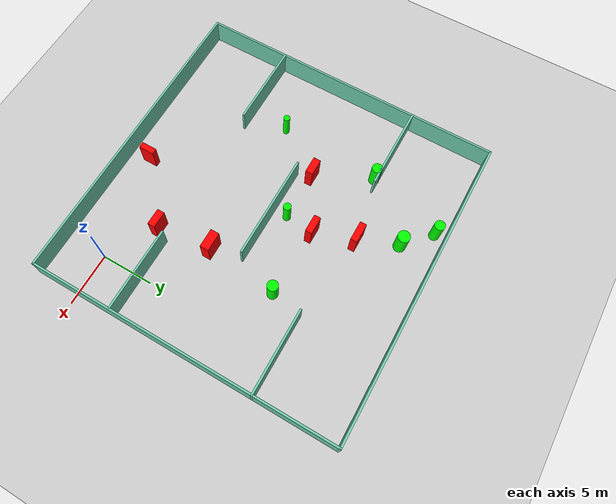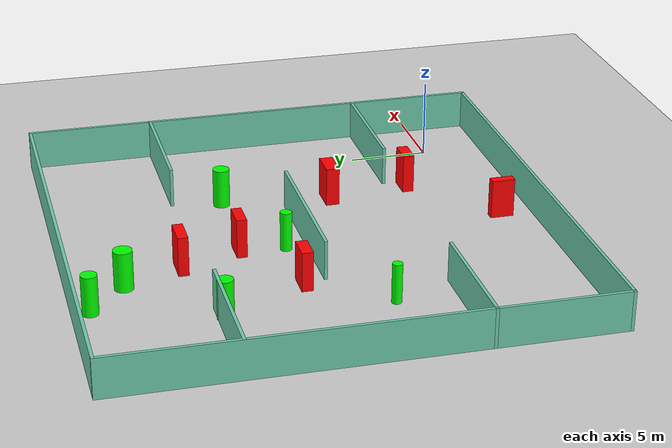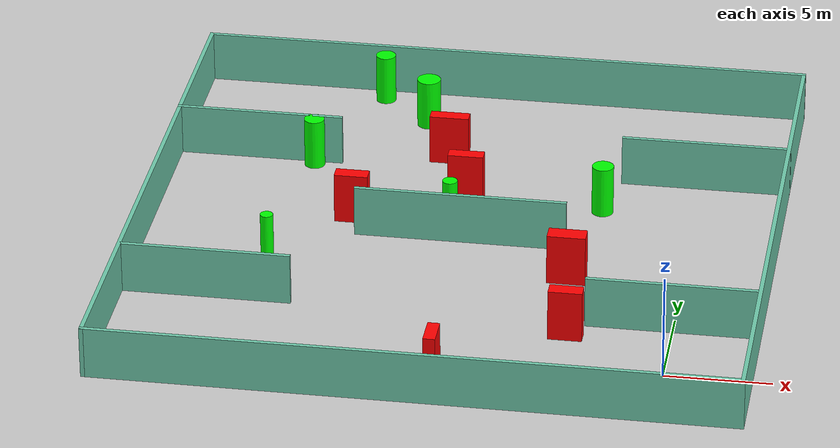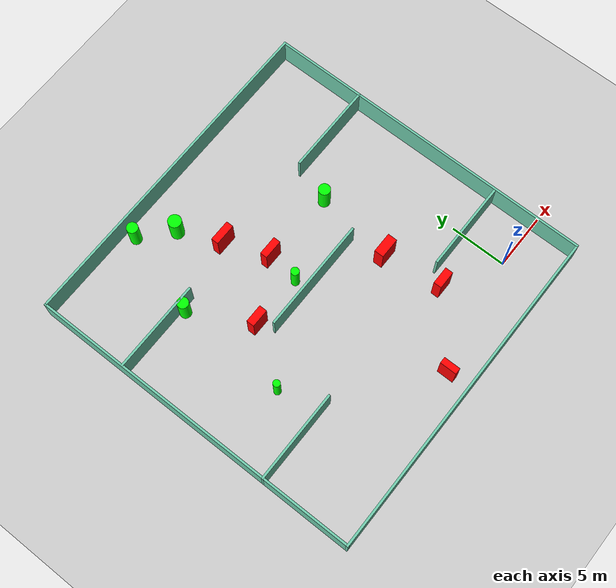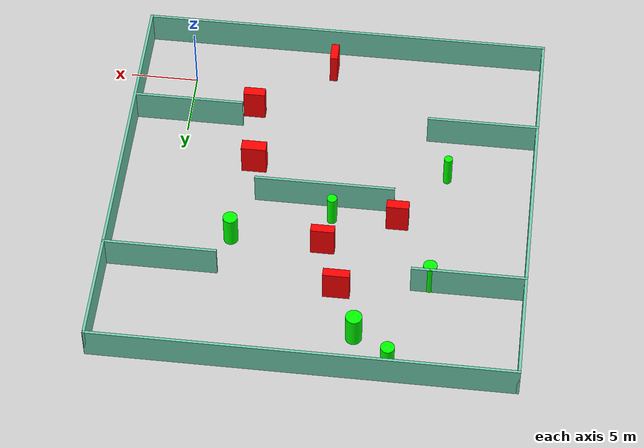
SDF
<sdf version="1.7">
 <world name="default">
  <light name="sun" type="directional">
   <pose>0 0 10 0 -0 0</pose>
   <diffuse>0.8 0.8 0.8 1</diffuse>
   <specular>0.2 0.2 0.2 1</specular>
   <attenuation>
    <range>1000</range>
    <constant>0.9</constant>
    <linear>0.01</linear>
    <quadratic>0.001</quadratic>
   </attenuation>
   <direction>-0.5 0.1 -0.9</direction>
   <spot><inner_angle>0</inner_angle><outer_angle>0</outer_angle><falloff>0</falloff></spot>
  </light>
  <model name="ground_plane">
   <static>1</static>
   <link name="link">
    <collision name="collision">
     <geometry><plane><normal>0 0 1</normal><size>100 100</size></plane></geometry>
     <surface>
      <contact><collide_bitmask>65535</collide_bitmask></contact>
      <friction><ode><mu>100</mu><mu2>50</mu2></ode></friction>
     </surface>
    </collision>
    <visual name="visual">
     <cast_shadows>0</cast_shadows>
     <geometry><plane><normal>0 0 1</normal><size>100 100</size></plane></geometry>
     <material>
      <script><uri>file://media/materials/scripts/gazebo.material</uri><name>Gazebo/Grey</name></script>
     </material>
    </visual>
   </link>
  </model>
  <gravity>0 0 -9.8</gravity>
  <magnetic_field>6e-06 2.3e-05 -4.2e-05</magnetic_field>
  <atmosphere type="adiabatic"/>
  <physics type="ode">
   <max_step_size>0.001</max_step_size>
   <real_time_factor>1</real_time_factor>
   <real_time_update_rate>1000</real_time_update_rate>
  </physics>
  <scene><ambient>0.4 0.4 0.4 1</ambient><background>0.7 0.7 0.7 1</background><shadows>1</shadows></scene>
  <spherical_coordinates>
   <surface_model>EARTH_WGS84</surface_model>
   <latitude_deg>0</latitude_deg>
   <longitude_deg>0</longitude_deg>
   <elevation>0</elevation>
   <heading_deg>0</heading_deg>
  </spherical_coordinates>
  <model name="my_base_walls">
   <link name="Wall_10">
    <collision name="Wall_10_Collision">
     <geometry><box><size>8.2 0.2 2.5</size></box></geometry>
     <pose>0 0 1.25 0 -0 0</pose>
    </collision>
    <visual name="Wall_10_Visual">
     <pose>0 0 1.25 0 -0 0</pose>
     <geometry><box><size>8.2 0.2 2.5</size></box></geometry>
     <material>
      <script><uri>file://media/materials/scripts/gazebo.material</uri><name>Gazebo/Grey</name></script>
      <ambient>0.435294 0.796078 0.67451 1</ambient>
     </material>
     <meta><layer>0</layer></meta>
    </visual>
    <pose>-11 -7 0 0 -0 0</pose>
   </link>
   <link name="Wall_12">
    <collision name="Wall_12_Collision">
     <geometry><box><size>8.2 0.2 2.5</size></box></geometry>
     <pose>0 0 1.25 0 -0 0</pose>
    </collision>
    <visual name="Wall_12_Visual">
     <pose>0 0 1.25 0 -0 0</pose>
     <geometry><box><size>8.2 0.2 2.5</size></box></geometry>
     <material>
      <script><uri>file://media/materials/scripts/gazebo.material</uri><name>Gazebo/Grey</name></script>
      <ambient>0.435294 0.796078 0.67451 1</ambient>
     </material>
     <meta><layer>0</layer></meta>
    </visual>
    <pose>-11 7 0 0 -0 0</pose>
   </link>
   <link name="Wall_14">
    <collision name="Wall_14_Collision">
     <geometry><box><size>8.2 0.2 2.5</size></box></geometry>
     <pose>0 0 1.25 0 -0 0</pose>
    </collision>
    <visual name="Wall_14_Visual">
     <pose>0 0 1.25 0 -0 0</pose>
     <geometry><box><size>8.2 0.2 2.5</size></box></geometry>
     <material>
      <script><uri>file://media/materials/scripts/gazebo.material</uri><name>Gazebo/Grey</name></script>
      <ambient>0.435294 0.796078 0.67451 1</ambient>
     </material>
     <meta><layer>0</layer></meta>
    </visual>
    <pose>11 7 0 0 -0 3.14159</pose>
   </link>
   <link name="Wall_16">
    <collision name="Wall_16_Collision">
     <geometry><box><size>10.2 0.2 2.5</size></box></geometry>
     <pose>0 0 1.25 0 -0 0</pose>
    </collision>
    <visual name="Wall_16_Visual">
     <pose>0 0 1.25 0 -0 0</pose>
     <geometry><box><size>10.2 0.2 2.5</size></box></geometry>
     <material>
      <script><uri>file://media/materials/scripts/gazebo.material</uri><name>Gazebo/Grey</name></script>
      <ambient>0.435294 0.796078 0.67451 1</ambient>
     </material>
     <meta><layer>0</layer></meta>
    </visual>
    <pose>0 0 0 0 -0 3.14159</pose>
   </link>
   <link name="Wall_2">
    <collision name="Wall_2_Collision">
     <geometry><box><size>30.2 0.2 2.5</size></box></geometry>
     <pose>0 0 1.25 0 -0 0</pose>
    </collision>
    <visual name="Wall_2_Visual">
     <pose>0 0 1.25 0 -0 0</pose>
     <geometry><box><size>30.2 0.2 2.5</size></box></geometry>
     <material>
      <script><uri>file://media/materials/scripts/gazebo.material</uri><name>Gazebo/Grey</name></script>
      <ambient>0.435294 0.796078 0.67451 1</ambient>
     </material>
     <meta><layer>0</layer></meta>
    </visual>
    <pose>0 -15 0 0 -0 3.14159</pose>
   </link>
   <link name="Wall_3">
    <collision name="Wall_3_Collision">
     <geometry><box><size>30.2 0.2 2.5</size></box></geometry>
     <pose>0 0 1.25 0 -0 0</pose>
    </collision>
    <visual name="Wall_3_Visual">
     <pose>0 0 1.25 0 -0 0</pose>
     <geometry><box><size>30.2 0.2 2.5</size></box></geometry>
     <material>
      <script><uri>file://media/materials/scripts/gazebo.material</uri><name>Gazebo/Grey</name></script>
      <ambient>0.435294 0.796078 0.67451 1</ambient>
     </material>
     <meta><layer>0</layer></meta>
    </visual>
    <pose>-15 0 0 0 -0 1.5708</pose>
   </link>
   <link name="Wall_4">
    <collision name="Wall_4_Collision">
     <geometry><box><size>30.2 0.2 2.5</size></box></geometry>
     <pose>0 0 1.25 0 -0 0</pose>
    </collision>
    <visual name="Wall_4_Visual">
     <pose>0 0 1.25 0 -0 0</pose>
     <geometry><box><size>30.2 0.2 2.5</size></box></geometry>
     <material>
      <script><uri>file://media/materials/scripts/gazebo.material</uri><name>Gazebo/Grey</name></script>
      <ambient>0.435294 0.796078 0.67451 1</ambient>
     </material>
     <meta><layer>0</layer></meta>
    </visual>
    <pose>0 15 0 0 -0 0</pose>
   </link>
   <link name="Wall_6">
    <collision name="Wall_6_Collision">
     <geometry><box><size>30.2 0.2 2.5</size></box></geometry>
     <pose>0 0 1.25 0 -0 0</pose>
    </collision>
    <visual name="Wall_6_Visual">
     <pose>0 0 1.25 0 -0 0</pose>
     <geometry><box><size>30.2 0.2 2.5</size></box></geometry>
     <material>
      <script><uri>file://media/materials/scripts/gazebo.material</uri><name>Gazebo/Grey</name></script>
      <ambient>0.435294 0.796078 0.67451 1</ambient>
     </material>
     <meta><layer>0</layer></meta>
    </visual>
    <pose>15 0 0 0 -0 1.5708</pose>
   </link>
   <link name="Wall_8">
    <collision name="Wall_8_Collision">
     <geometry><box><size>8.2 0.2 2.5</size></box></geometry>
     <pose>0 0 1.25 0 -0 0</pose>
    </collision>
    <visual name="Wall_8_Visual">
     <pose>0 0 1.25 0 -0 0</pose>
     <geometry><box><size>8.2 0.2 2.5</size></box></geometry>
     <material>
      <script><uri>file://media/materials/scripts/gazebo.material</uri><name>Gazebo/Grey</name></script>
      <ambient>0.435294 0.796078 0.67451 1</ambient>
     </material>
     <meta><layer>0</layer></meta>
    </visual>
    <pose>11 -7 0 0 -0 3.14159</pose>
   </link>
   <static>1</static>
   <pose>-11 11 0 0 -0 0</pose>
  </model>
  <model name="cylinder1">
   <static>1</static>
   <link name="link">
    <inertial>
     <mass>1</mass>
     <inertia><ixx>0.5</ixx><ixy>0</ixy><ixz>0</ixz><iyy>0.5</iyy><iyz>0</iyz><izz>1</izz></inertia>
    </inertial>
    <collision name="collision">
     <geometry><cylinder><radius>0.5229580486885683</radius><length>2.5</length></cylinder></geometry>
    </collision>
    <visual name="visual">
     <geometry><cylinder><radius>0.5229580486885683</radius><length>2.5</length></cylinder></geometry>
     <material>
      <ambient>0 1 0 1</ambient>
      <diffuse>0 1 0 1</diffuse>
      <specular>0.1 0.1 0.1 1</specular>
      <emissive>0 0 0 0</emissive>
     </material>
    </visual>
   </link>
   <pose>-4.656618111433005 14.918060367286394 1.25 0 0 0</pose>
  </model>
  <model name="cylinder2">
   <static>1</static>
   <link name="link">
    <inertial>
     <mass>1</mass>
     <inertia><ixx>0.5</ixx><ixy>0</ixy><ixz>0</ixz><iyy>0.5</iyy><iyz>0</iyz><izz>1</izz></inertia>
    </inertial>
    <collision name="collision">
     <geometry><cylinder><radius>0.49229618429363714</radius><length>2.5</length></cylinder></geometry>
    </collision>
    <visual name="visual">
     <geometry><cylinder><radius>0.49229618429363714</radius><length>2.5</length></cylinder></geometry>
     <material>
      <ambient>0 1 0 1</ambient>
      <diffuse>0 1 0 1</diffuse>
      <specular>0.1 0.1 0.1 1</specular>
      <emissive>0 0 0 0</emissive>
     </material>
    </visual>
   </link>
   <pose>-16.90033544129344 24.963388213481764 1.25 0 0 0</pose>
  </model>
  <model name="cylinder3">
   <static>1</static>
   <link name="link">
    <inertial>
     <mass>1</mass>
     <inertia><ixx>0.5</ixx><ixy>0</ixy><ixz>0</ixz><iyy>0.5</iyy><iyz>0</iyz><izz>1</izz></inertia>
    </inertial>
    <collision name="collision">
     <geometry><cylinder><radius>0.3089839605615548</radius><length>2.5</length></cylinder></geometry>
    </collision>
    <visual name="visual">
     <geometry><cylinder><radius>0.3089839605615548</radius><length>2.5</length></cylinder></geometry>
     <material>
      <ambient>0 1 0 1</ambient>
      <diffuse>0 1 0 1</diffuse>
      <specular>0.1 0.1 0.1 1</specular>
      <emissive>0 0 0 0</emissive>
     </material>
    </visual>
   </link>
   <pose>-19.721010206268407 7.751192635384587 1.25 0 0 0</pose>
  </model>
  <model name="cylinder4">
   <static>1</static>
   <link name="link">
    <inertial>
     <mass>1</mass>
     <inertia><ixx>0.5</ixx><ixy>0</ixy><ixz>0</ixz><iyy>0.5</iyy><iyz>0</iyz><izz>1</izz></inertia>
    </inertial>
    <collision name="collision">
     <geometry><cylinder><radius>0.5853702389383253</radius><length>2.5</length></cylinder></geometry>
    </collision>
    <visual name="visual">
     <geometry><cylinder><radius>0.5853702389383253</radius><length>2.5</length></cylinder></geometry>
     <material>
      <ambient>0 1 0 1</ambient>
      <diffuse>0 1 0 1</diffuse>
      <specular>0.1 0.1 0.1 1</specular>
      <emissive>0 0 0 0</emissive>
     </material>
    </visual>
   </link>
   <pose>-14.34834258975404 22.667647686179407 1.25 0 0 0</pose>
  </model>
  <model name="cylinder5">
   <static>1</static>
   <link name="link">
    <inertial>
     <mass>1</mass>
     <inertia><ixx>0.5</ixx><ixy>0</ixy><ixz>0</ixz><iyy>0.5</iyy><iyz>0</iyz><izz>1</izz></inertia>
    </inertial>
    <collision name="collision">
     <geometry><cylinder><radius>0.49794042169854</radius><length>2.5</length></cylinder></geometry>
    </collision>
    <visual name="visual">
     <geometry><cylinder><radius>0.49794042169854</radius><length>2.5</length></cylinder></geometry>
     <material>
      <ambient>0 1 0 1</ambient>
      <diffuse>0 1 0 1</diffuse>
      <specular>0.1 0.1 0.1 1</specular>
      <emissive>0 0 0 0</emissive>
     </material>
    </visual>
   </link>
   <pose>-19.22820453733461 17.634110224365593 1.25 0 0 0</pose>
  </model>
  <model name="cylinder6">
   <static>1</static>
   <link name="link">
    <inertial>
     <mass>1</mass>
     <inertia><ixx>0.5</ixx><ixy>0</ixy><ixz>0</ixz><iyy>0.5</iyy><iyz>0</iyz><izz>1</izz></inertia>
    </inertial>
    <collision name="collision">
     <geometry><cylinder><radius>0.36389730394329955</radius><length>2.5</length></cylinder></geometry>
    </collision>
    <visual name="visual">
     <geometry><cylinder><radius>0.36389730394329955</radius><length>2.5</length></cylinder></geometry>
     <material>
      <ambient>0 1 0 1</ambient>
      <diffuse>0 1 0 1</diffuse>
      <specular>0.1 0.1 0.1 1</specular>
      <emissive>0 0 0 0</emissive>
     </material>
    </visual>
   </link>
   <pose>-11.69453885855583 12.361101806101182 1.25 0 0 0</pose>
  </model>
  <model name="box1">
   <static>1</static>
   <link name="link">
    <inertial>
     <mass>1</mass>
     <inertia><ixx>0.083</ixx><ixy>0</ixy><ixz>0</ixz><iyy>0.083</iyy><iyz>0</iyz><izz>0.083</izz></inertia>
    </inertial>
    <collision name="collision">
     <geometry><box><size>1.8272017066439927 0.8443654579675692 2.5</size></box></geometry>
    </collision>
    <visual name="visual">
     <geometry><box><size>1.8272017066439927 0.8443654579675692 2.5</size></box></geometry>
     <material>
      <ambient>1 0 0 1</ambient>
      <diffuse>1 0 0 1</diffuse>
      <specular>0.1 0.1 0.1 1</specular>
      <emissive>0 0 0 0</emissive>
     </material>
    </visual>
    <sensor name="my_contact" type="contact">
     <contact><collision>box_collision</collision><topic>__default_topic__</topic></contact>
    </sensor>
   </link>
   <pose>-5.474181358281456 8.038656285070138 1.25 0 0 0</pose>
  </model>
  <model name="box2">
   <static>1</static>
   <link name="link">
    <inertial>
     <mass>1</mass>
     <inertia><ixx>0.083</ixx><ixy>0</ixy><ixz>0</ixz><iyy>0.083</iyy><iyz>0</iyz><izz>0.083</izz></inertia>
    </inertial>
    <collision name="collision">
     <geometry><box><size>0.5693931293268643 1.4814717317613473 2.5</size></box></geometry>
    </collision>
    <visual name="visual">
     <geometry><box><size>0.5693931293268643 1.4814717317613473 2.5</size></box></geometry>
     <material>
      <ambient>1 0 0 1</ambient>
      <diffuse>1 0 0 1</diffuse>
      <specular>0.1 0.1 0.1 1</specular>
      <emissive>0 0 0 0</emissive>
     </material>
    </visual>
    <sensor name="my_contact" type="contact">
     <contact><collision>box_collision</collision><topic>__default_topic__</topic></contact>
    </sensor>
   </link>
   <pose>-10.332510504118495 -1.8673216661322782 1.25 0 0 0</pose>
  </model>
  <model name="box3">
   <static>1</static>
   <link name="link">
    <inertial>
     <mass>1</mass>
     <inertia><ixx>0.083</ixx><ixy>0</ixy><ixz>0</ixz><iyy>0.083</iyy><iyz>0</iyz><izz>0.083</izz></inertia>
    </inertial>
    <collision name="collision">
     <geometry><box><size>1.7217312041005428 0.6333706889204775 2.5</size></box></geometry>
    </collision>
    <visual name="visual">
     <geometry><box><size>1.7217312041005428 0.6333706889204775 2.5</size></box></geometry>
     <material>
      <ambient>1 0 0 1</ambient>
      <diffuse>1 0 0 1</diffuse>
      <specular>0.1 0.1 0.1 1</specular>
      <emissive>0 0 0 0</emissive>
     </material>
    </visual>
    <sensor name="my_contact" type="contact">
     <contact><collision>box_collision</collision><topic>__default_topic__</topic></contact>
    </sensor>
   </link>
   <pose>-11.339687589197444 15.17593180359382 1.25 0 0 0</pose>
  </model>
  <model name="box4">
   <static>1</static>
   <link name="link">
    <inertial>
     <mass>1</mass>
     <inertia><ixx>0.083</ixx><ixy>0</ixy><ixz>0</ixz><iyy>0.083</iyy><iyz>0</iyz><izz>0.083</izz></inertia>
    </inertial>
    <collision name="collision">
     <geometry><box><size>1.6182267625699855 0.6970747509879462 2.5</size></box></geometry>
    </collision>
    <visual name="visual">
     <geometry><box><size>1.6182267625699855 0.6970747509879462 2.5</size></box></geometry>
     <material>
      <ambient>1 0 0 1</ambient>
      <diffuse>1 0 0 1</diffuse>
      <specular>0.1 0.1 0.1 1</specular>
      <emissive>0 0 0 0</emissive>
     </material>
    </visual>
    <sensor name="my_contact" type="contact">
     <contact><collision>box_collision</collision><topic>__default_topic__</topic></contact>
    </sensor>
   </link>
   <pose>-16.458649077461615 12.389504084718629 1.25 0 0 0</pose>
  </model>
  <model name="box5">
   <static>1</static>
   <link name="link">
    <inertial>
     <mass>1</mass>
     <inertia><ixx>0.083</ixx><ixy>0</ixy><ixz>0</ixz><iyy>0.083</iyy><iyz>0</iyz><izz>0.083</izz></inertia>
    </inertial>
    <collision name="collision">
     <geometry><box><size>1.916905289730897 0.6432817683396137 2.5</size></box></geometry>
    </collision>
    <visual name="visual">
     <geometry><box><size>1.916905289730897 0.6432817683396137 2.5</size></box></geometry>
     <material>
      <ambient>1 0 0 1</ambient>
      <diffuse>1 0 0 1</diffuse>
      <specular>0.1 0.1 0.1 1</specular>
      <emissive>0 0 0 0</emissive>
     </material>
    </visual>
    <sensor name="my_contact" type="contact">
     <contact><collision>box_collision</collision><topic>__default_topic__</topic></contact>
    </sensor>
   </link>
   <pose>-12.731621777406119 19.00726303972575 1.25 0 0 0</pose>
  </model>
  <model name="box6">
   <static>1</static>
   <link name="link">
    <inertial>
     <mass>1</mass>
     <inertia><ixx>0.083</ixx><ixy>0</ixy><ixz>0</ixz><iyy>0.083</iyy><iyz>0</iyz><izz>0.083</izz></inertia>
    </inertial>
    <collision name="collision">
     <geometry><box><size>1.5951044018272877 0.707961221872699 2.5</size></box></geometry>
    </collision>
    <visual name="visual">
     <geometry><box><size>1.5951044018272877 0.707961221872699 2.5</size></box></geometry>
     <material>
      <ambient>1 0 0 1</ambient>
      <diffuse>1 0 0 1</diffuse>
      <specular>0.1 0.1 0.1 1</specular>
      <emissive>0 0 0 0</emissive>
     </material>
    </visual>
    <sensor name="my_contact" type="contact">
     <contact><collision>box_collision</collision><topic>__default_topic__</topic></contact>
    </sensor>
   </link>
   <pose>-4.833245890770915 2.801080009286408 1.25 0 0 0</pose>
  </model>
 </world>
</sdf>
